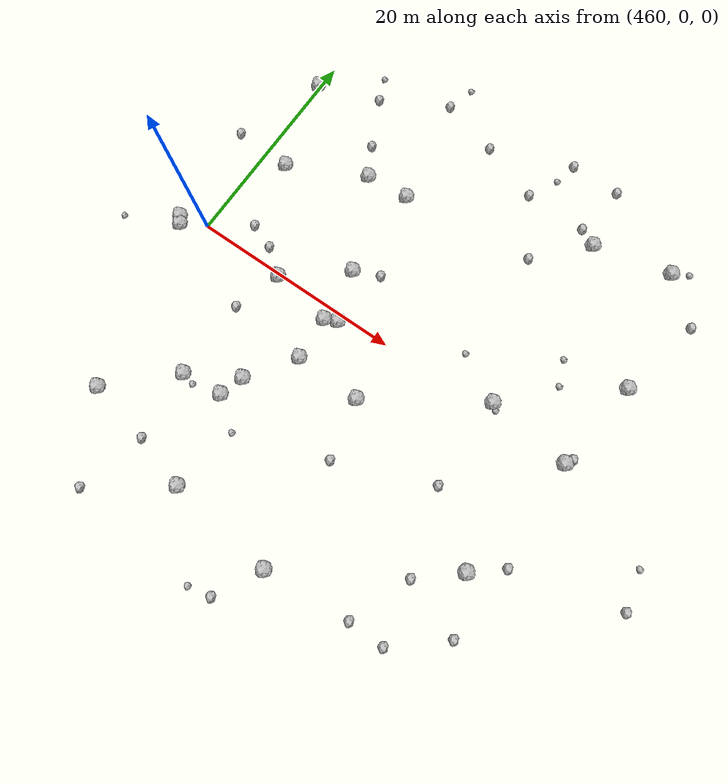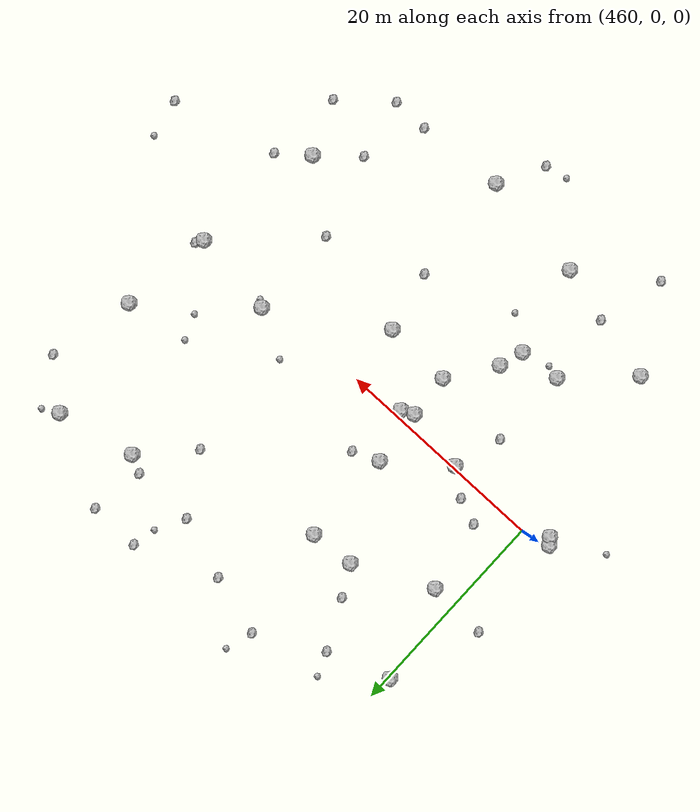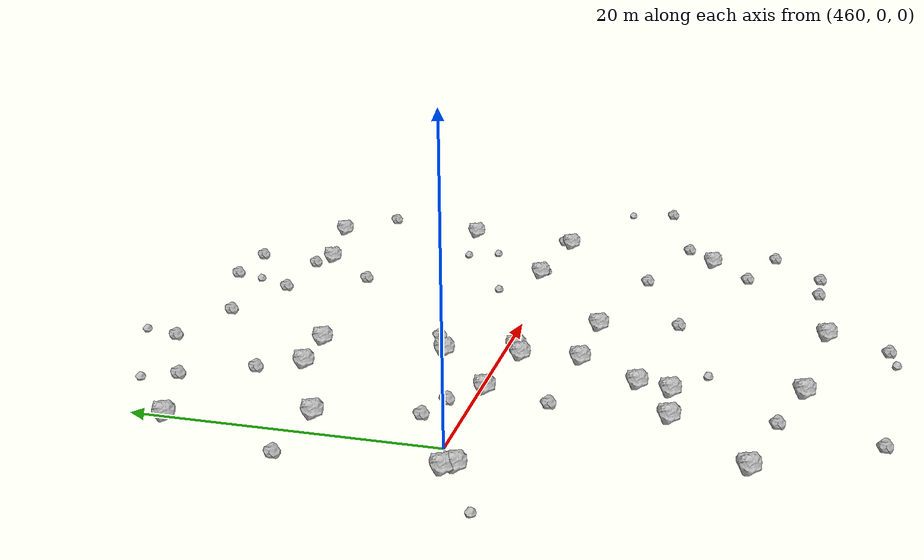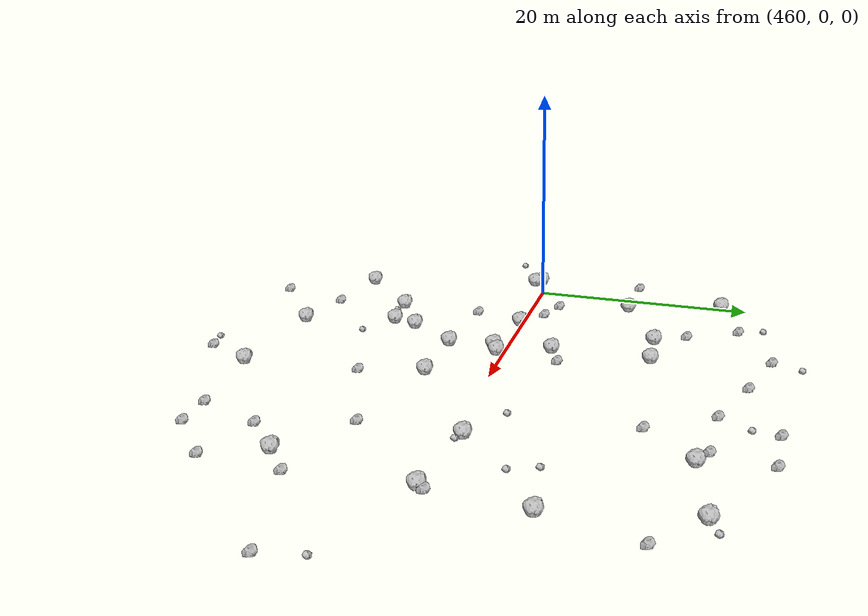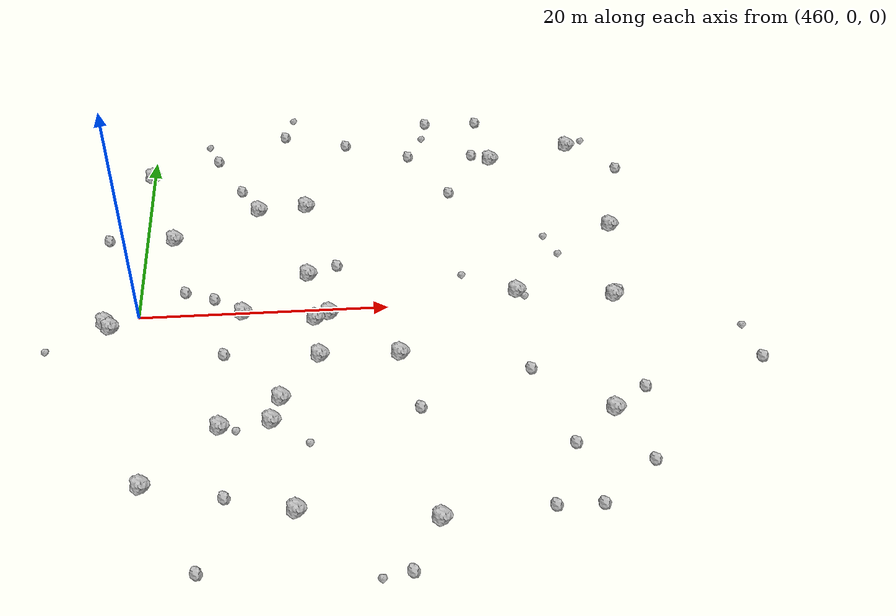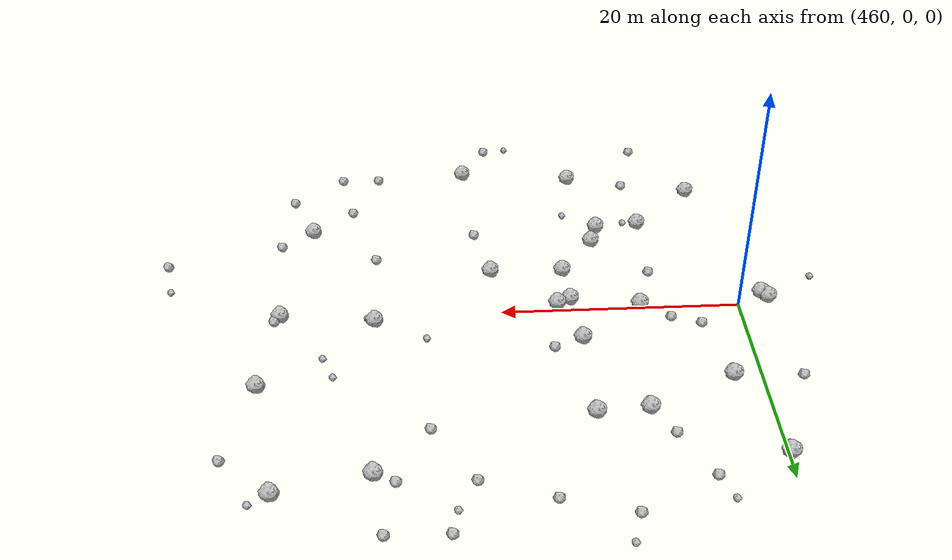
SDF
<sdf version="1.6">
 <world name="default">
  <include><uri>model://sun</uri></include>
  <model name="rock1_12_3">
   <include><uri>model://rock1</uri><pose>459.90719700909875 17.644627621234015 0.5 0 0 0</pose></include>
  </model>
  <model name="rock1_12_4">
   <include><uri>model://rock1</uri><pose>482.6050484718506 -21.271282924795933 0.5 0 0 0</pose></include>
  </model>
  <model name="rock1_12_5">
   <include><uri>model://rock1</uri><pose>457.8745656358376 -1.2682379114276188 0.5 0 0 0</pose></include>
  </model>
  <model name="rock1_12_6">
   <include><uri>model://rock1</uri><pose>490.5884919951878 0.9548673315659357 0.5 0 0 0</pose></include>
  </model>
  <model name="rock1_12_7">
   <include><uri>model://rock1</uri><pose>499.58962663203255 8.620950870903386 0.5 0 0 0</pose></include>
  </model>
  <model name="rock1_12_8">
   <include><uri>model://rock1</uri><pose>496.3738175585174 -12.105480984460048 0.5 0 0 0</pose></include>
  </model>
  <model name="rock1_12_9">
   <include><uri>model://rock1</uri><pose>480.67602374960643 -5.446819639455068 0.5 0 0 0</pose></include>
  </model>
  <model name="rock1_12_10">
   <include><uri>model://rock1</uri><pose>490.302347892689 18.386596697299417 0.5 0 0 0</pose></include>
  </model>
  <model name="rock1_12_11">
   <include><uri>model://rock1</uri><pose>497.5523224776905 20.00002931275788 0.5 0 0 0</pose></include>
  </model>
  <model name="rock1_12_12">
   <include><uri>model://rock1</uri><pose>457.4127915372968 -0.6656314945944644 0.5 0 0 0</pose></include>
  </model>
  <model name="rock1_12_13">
   <include><uri>model://rock1</uri><pose>468.367534286906 -0.24742939269181008 0.5 0 0 0</pose></include>
  </model>
  <model name="rock1_12_14">
   <include><uri>model://rock1</uri><pose>466.9385324415406 -12.137257646952115 0.5 0 0 0</pose></include>
  </model>
  <model name="rock1_12_15">
   <include><uri>model://rock1</uri><pose>469.42107222921595 12.449364203522038 0.5 0 0 0</pose></include>
  </model>
  <model name="rock1_12_16">
   <include><uri>model://rock1</uri><pose>474.4302360187567 -5.271712432912622 0.5 0 0 0</pose></include>
  </model>
  <model name="rock1_12_17">
   <include><uri>model://rock1</uri><pose>472.56374396852334 -20.00443466587939 0.5 0 0 0</pose></include>
  </model>
  <model name="rock1_12_18">
   <include><uri>model://rock1</uri><pose>471.44288917513916 -9.543927697382223 0.5 0 0 0</pose></include>
  </model>
  <model name="rock1_12_19">
   <include><uri>model://rock1</uri><pose>474.15055790324317 -1.2089699218941732 0.5 0 0 0</pose></include>
  </model>
  <model name="rock1_12_20">
   <include><uri>model://rock1</uri><pose>473.6270883779094 3.960478009782044 0.5 0 0 0</pose></include>
  </model>
  <model name="rock1_12_21">
   <include><uri>model://rock1</uri><pose>462.33077959531255 9.016216543954307 0.5 0 0 0</pose></include>
  </model>
  <model name="rock1_12_22">
   <include><uri>model://rock1</uri><pose>473.5417081101679 12.729467122269355 0.5 0 0 0</pose></include>
  </model>
  <model name="rock1_12_23">
   <include><uri>model://rock1</uri><pose>461.559387388741 -17.275920482236696 0.5 0 0 0</pose></include>
  </model>
  <model name="rock1_12_24">
   <include><uri>model://rock1</uri><pose>475.28084043724346 -0.6585840983568687 0.5 0 0 0</pose></include>
  </model>
  <model name="rock1_12_25">
   <include><uri>model://rock1</uri><pose>498.42827298891433 -0.006820954729622741 0.5 0 0 0</pose></include>
  </model>
  <model name="rock1_12_26">
   <include><uri>model://rock1</uri><pose>470.74812990741947 -11.761021983661493 0.5 0 0 0</pose></include>
  </model>
  <model name="rock2_12_0">
   <include><uri>model://rock2</uri><pose>456.816696792343 9.301549866065784 0.3 0 0 0</pose></include>
  </model>
  <model name="rock2_12_1">
   <include><uri>model://rock2</uri><pose>498.3580797529588 -17.006871828380866 0.3 0 0 0</pose></include>
  </model>
  <model name="rock2_12_2">
   <include><uri>model://rock2</uri><pose>484.7664843543306 24.259039759569966 0.3 0 0 0</pose></include>
  </model>
  <model name="rock2_12_3">
   <include><uri>model://rock2</uri><pose>489.47775390936954 24.174564591079296 0.3 0 0 0</pose></include>
  </model>
  <model name="rock2_12_4">
   <include><uri>model://rock2</uri><pose>466.9702900982312 -4.680891213186239 0.3 0 0 0</pose></include>
  </model>
  <model name="rock2_12_5">
   <include><uri>model://rock2</uri><pose>486.11129181549165 13.98382687227344 0.3 0 0 0</pose></include>
  </model>
  <model name="rock2_12_6">
   <include><uri>model://rock2</uri><pose>471.69084477898815 22.968543153387138 0.3 0 0 0</pose></include>
  </model>
  <model name="rock2_12_7">
   <include><uri>model://rock2</uri><pose>463.61182072786914 2.501270890231254 0.3 0 0 0</pose></include>
  </model>
  <model name="rock2_12_8">
   <include><uri>model://rock2</uri><pose>488.66860122555585 19.244809928966653 0.3 0 0 0</pose></include>
  </model>
  <model name="rock2_12_9">
   <include><uri>model://rock2</uri><pose>481.87003768958664 -11.010431313572358 0.3 0 0 0</pose></include>
  </model>
  <model name="rock2_12_10">
   <include><uri>model://rock2</uri><pose>467.48195372686615 -18.57941425314842 0.3 0 0 0</pose></include>
  </model>
  <model name="rock2_12_11">
   <include><uri>model://rock2</uri><pose>490.61018614969163 -7.590239195096739 0.3 0 0 0</pose></include>
  </model>
  <model name="rock2_12_12">
   <include><uri>model://rock2</uri><pose>477.23008431548095 21.35014443308792 0.3 0 0 0</pose></include>
  </model>
  <model name="rock2_12_13">
   <include><uri>model://rock2</uri><pose>490.6493466502629 -20.6062457257105 0.3 0 0 0</pose></include>
  </model>
  <model name="rock2_12_14">
   <include><uri>model://rock2</uri><pose>466.002282569067 1.5663112290619559 0.3 0 0 0</pose></include>
  </model>
  <model name="rock2_12_15">
   <include><uri>model://rock2</uri><pose>482.8500247702284 19.36790916736379 0.3 0 0 0</pose></include>
  </model>
  <model name="rock2_12_16">
   <include><uri>model://rock2</uri><pose>475.99480615089686 4.996834113828321 0.3 0 0 0</pose></include>
  </model>
  <model name="rock2_12_17">
   <include><uri>model://rock2</uri><pose>480.3389324391611 -25.422715865570346 0.3 0 0 0</pose></include>
  </model>
  <model name="rock2_12_18">
   <include><uri>model://rock2</uri><pose>498.85307631348934 0.667337106147162 0.3 0 0 0</pose></include>
  </model>
  <model name="rock2_12_19">
   <include><uri>model://rock2</uri><pose>501.48952353305043 16.563485425911395 0.3 0 0 0</pose></include>
  </model>
  <model name="rock2_12_20">
   <include><uri>model://rock2</uri><pose>465.6510641617399 19.697027438835008 0.3 0 0 0</pose></include>
  </model>
  <model name="rock2_12_21">
   <include><uri>model://rock2</uri><pose>492.90427010451054 -15.114134204946623 0.3 0 0 0</pose></include>
  </model>
  <model name="rock2_12_22">
   <include><uri>model://rock2</uri><pose>508.7034331063751 -7.418719874501583 0.3 0 0 0</pose></include>
  </model>
  <model name="rock2_12_23">
   <include><uri>model://rock2</uri><pose>499.02442974666985 -9.951654242562647 0.3 0 0 0</pose></include>
  </model>
  <model name="rock2_12_24">
   <include><uri>model://rock2</uri><pose>467.87874630664805 15.240644119780953 0.3 0 0 0</pose></include>
  </model>
  <model name="rock2_12_25">
   <include><uri>model://rock2</uri><pose>465.85653084207723 -24.74359535701599 0.3 0 0 0</pose></include>
  </model>
  <model name="rock2_12_26">
   <include><uri>model://rock2</uri><pose>494.0214141140924 -20.6582984685447 0.3 0 0 0</pose></include>
  </model>
  <model name="rock3_12_0">
   <include><uri>model://rock3</uri><pose>507.9561256170699 -3.915392241563037 0.2 0 0 0</pose></include>
  </model>
  <model name="rock3_12_1">
   <include><uri>model://rock3</uri><pose>491.1473932993433 0.4828468517401667 0.2 0 0 0</pose></include>
  </model>
  <model name="rock3_12_2">
   <include><uri>model://rock3</uri><pose>453.0191858969227 -3.5127255388469223 0.2 0 0 0</pose></include>
  </model>
  <model name="rock3_12_3">
   <include><uri>model://rock3</uri><pose>494.5838267027017 5.408680285506563 0.2 0 0 0</pose></include>
  </model>
  <model name="rock3_12_4">
   <include><uri>model://rock3</uri><pose>473.5498039263497 -13.918875992616545 0.2 0 0 0</pose></include>
  </model>
  <model name="rock3_12_5">
   <include><uri>model://rock3</uri><pose>468.11494162912 -12.467937455038037 0.2 0 0 0</pose></include>
  </model>
  <model name="rock3_12_6">
   <include><uri>model://rock3</uri><pose>498.9889967478198 20.82629541384575 0.2 0 0 0</pose></include>
  </model>
  <model name="rock3_12_7">
   <include><uri>model://rock3</uri><pose>472.415447461438 25.533010461893134 0.2 0 0 0</pose></include>
  </model>
  <model name="rock3_12_8">
   <include><uri>model://rock3</uri><pose>486.25182217346236 3.2697861211156223 0.2 0 0 0</pose></include>
  </model>
  <model name="rock3_12_9">
   <include><uri>model://rock3</uri><pose>493.66653824375715 7.69183908367971 0.2 0 0 0</pose></include>
  </model>
  <model name="rock3_12_10">
   <include><uri>model://rock3</uri><pose>478.2317418260364 -25.872889366909924 0.2 0 0 0</pose></include>
  </model>
  <model name="rock3_12_11">
   <include><uri>model://rock3</uri><pose>484.2697534451694 22.033901654994857 0.2 0 0 0</pose></include>
  </model>
  <model name="rock3_12_12">
   <include><uri>model://rock3</uri><pose>464.7378276697361 21.875659437861493 0.2 0 0 0</pose></include>
  </model>
 </world>
</sdf>
